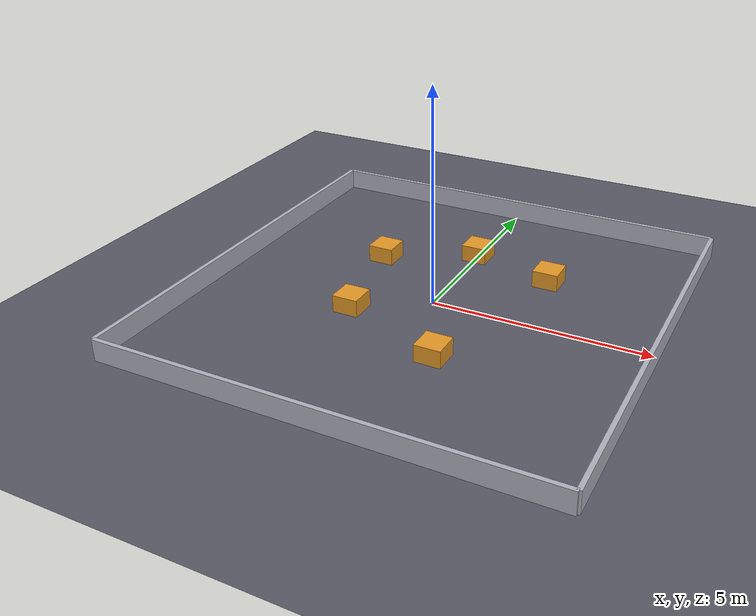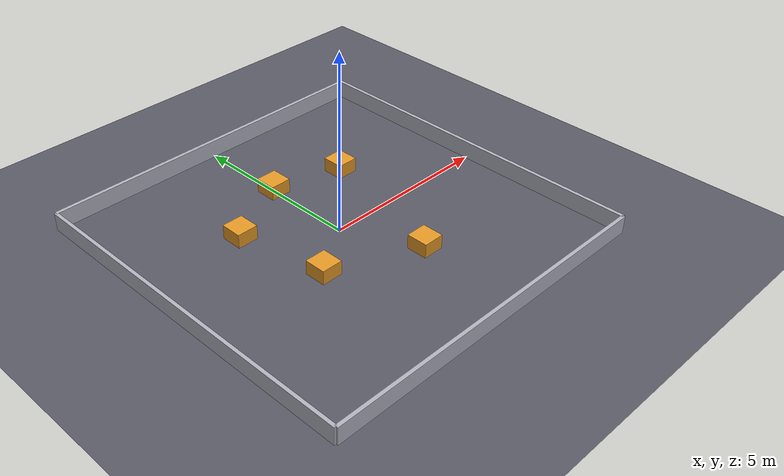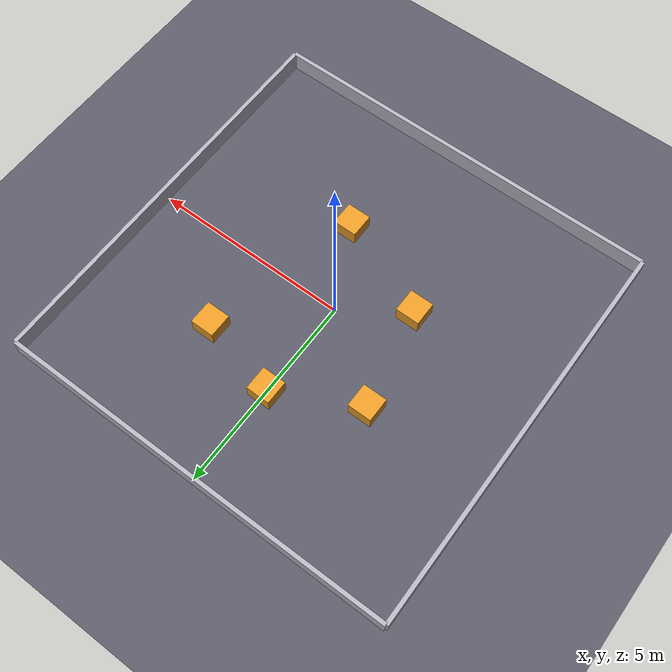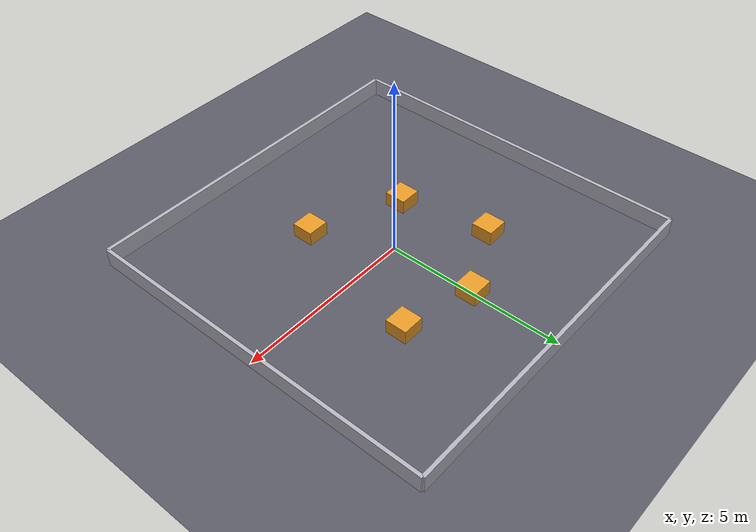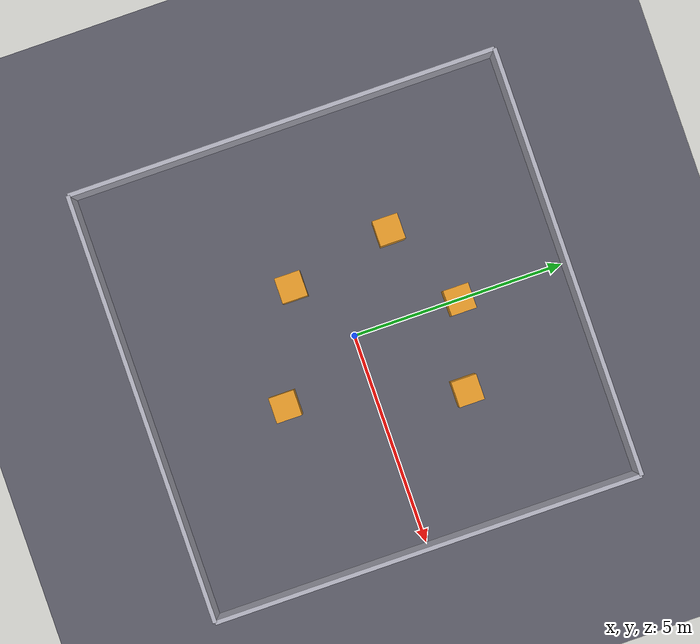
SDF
<?xml version="1.0" ?>
<sdf version="1.8">
  <world name="arena_10x10">
    <!-- Physics parameters -->
    <physics name="1ms" type="ignored">
      <max_step_size>0.001</max_step_size>
      <real_time_factor>1.0</real_time_factor>
    </physics>

    <!-- Plugins -->
    <plugin
      filename="ignition-gazebo-physics-system"
      name="ignition::gazebo::systems::Physics">
    </plugin>
    <plugin
      filename="ignition-gazebo-user-commands-system"
      name="ignition::gazebo::systems::UserCommands">
    </plugin>
    <plugin
      filename="ignition-gazebo-scene-broadcaster-system"
      name="ignition::gazebo::systems::SceneBroadcaster">
    </plugin>
    <plugin
      filename="ignition-gazebo-sensors-system"
      name="ignition::gazebo::systems::Sensors">
      <render_engine>ogre2</render_engine>
    </plugin>

    <!-- Sun Light -->
    <light type="directional" name="sun">
      <cast_shadows>true</cast_shadows>
      <pose>0 0 10 0 0 0</pose>
      <diffuse>0.8 0.8 0.8 1</diffuse>
      <specular>0.2 0.2 0.2 1</specular>
      <attenuation>
        <range>1000</range>
        <constant>0.9</constant>
        <linear>0.01</linear>
        <quadratic>0.001</quadratic>
      </attenuation>
      <direction>-0.5 0.1 -0.9</direction>
    </light>

    <!-- Ground Plane -->
    <model name="ground_plane">
      <static>true</static>
      <link name="link">
        <collision name="collision">
          <geometry>
            <plane>
              <normal>0 0 1</normal>
              <size>14 14</size>
            </plane>
          </geometry>
          <surface>
            <friction>
              <ode>
                <mu>100</mu>
                <mu2>50</mu2>
              </ode>
            </friction>
          </surface>
        </collision>
        <visual name="visual">
          <geometry>
            <plane>
              <normal>0 0 1</normal>
              <size>14 14</size>
            </plane>
          </geometry>
          <material>
            <ambient>0.25 0.25 0.30 1</ambient>
            <diffuse>0.35 0.35 0.40 1</diffuse>
            <specular>0.1 0.1 0.1 1</specular>
          </material>
        </visual>
      </link>
    </model>

    <!-- Arena Perimeter Walls (10m x 10m enclosure centered at origin) -->
    <!-- North Wall: y = +5.05 -->
    <model name="wall_north">
      <static>true</static>
      <pose>0 5.05 0.25 0 0 0</pose>
      <link name="link">
        <collision name="collision">
          <geometry>
            <box><size>10.1 0.1 0.5</size></box>
          </geometry>
        </collision>
        <visual name="visual">
          <geometry>
            <box><size>10.1 0.1 0.5</size></box>
          </geometry>
          <material>
            <ambient>0.6 0.6 0.65 1</ambient>
            <diffuse>0.7 0.7 0.75 1</diffuse>
          </material>
        </visual>
      </link>
    </model>

    <!-- South Wall: y = -5.05 -->
    <model name="wall_south">
      <static>true</static>
      <pose>0 -5.05 0.25 0 0 0</pose>
      <link name="link">
        <collision name="collision">
          <geometry>
            <box><size>10.1 0.1 0.5</size></box>
          </geometry>
        </collision>
        <visual name="visual">
          <geometry>
            <box><size>10.1 0.1 0.5</size></box>
          </geometry>
          <material>
            <ambient>0.6 0.6 0.65 1</ambient>
            <diffuse>0.7 0.7 0.75 1</diffuse>
          </material>
        </visual>
      </link>
    </model>

    <!-- East Wall: x = +5.05 -->
    <model name="wall_east">
      <static>true</static>
      <pose>5.05 0 0.25 0 0 0</pose>
      <link name="link">
        <collision name="collision">
          <geometry>
            <box><size>0.1 10.1 0.5</size></box>
          </geometry>
        </collision>
        <visual name="visual">
          <geometry>
            <box><size>0.1 10.1 0.5</size></box>
          </geometry>
          <material>
            <ambient>0.6 0.6 0.65 1</ambient>
            <diffuse>0.7 0.7 0.75 1</diffuse>
          </material>
        </visual>
      </link>
    </model>

    <!-- West Wall: x = -5.05 -->
    <model name="wall_west">
      <static>true</static>
      <pose>-5.05 0 0.25 0 0 0</pose>
      <link name="link">
        <collision name="collision">
          <geometry>
            <box><size>0.1 10.1 0.5</size></box>
          </geometry>
        </collision>
        <visual name="visual">
          <geometry>
            <box><size>0.1 10.1 0.5</size></box>
          </geometry>
          <material>
            <ambient>0.6 0.6 0.65 1</ambient>
            <diffuse>0.7 0.7 0.75 1</diffuse>
          </material>
        </visual>
      </link>
    </model>

    <!-- 5 Static Obstacles (Positions from Blueprint: (2,2), (-2,1.5), (1,-2), (-1.5,-1), (0,2.5)) -->
    <!-- Obstacle 1: (2, 2) -->
    <model name="obstacle_1">
      <static>true</static>
      <pose>2.0 2.0 0.20 0 0 0</pose>
      <link name="link">
        <collision name="collision">
          <geometry>
            <box><size>0.6 0.6 0.4</size></box>
          </geometry>
        </collision>
        <visual name="visual">
          <geometry>
            <box><size>0.6 0.6 0.4</size></box>
          </geometry>
          <material>
            <ambient>0.8 0.5 0.1 1</ambient>
            <diffuse>0.9 0.6 0.15 1</diffuse>
          </material>
        </visual>
      </link>
    </model>

    <!-- Obstacle 2: (-2, 1.5) -->
    <model name="obstacle_2">
      <static>true</static>
      <pose>-2.0 1.5 0.20 0 0 0</pose>
      <link name="link">
        <collision name="collision">
          <geometry>
            <box><size>0.6 0.6 0.4</size></box>
          </geometry>
        </collision>
        <visual name="visual">
          <geometry>
            <box><size>0.6 0.6 0.4</size></box>
          </geometry>
          <material>
            <ambient>0.8 0.5 0.1 1</ambient>
            <diffuse>0.9 0.6 0.15 1</diffuse>
          </material>
        </visual>
      </link>
    </model>

    <!-- Obstacle 3: (1, -2) -->
    <model name="obstacle_3">
      <static>true</static>
      <pose>1.0 -2.0 0.20 0 0 0</pose>
      <link name="link">
        <collision name="collision">
          <geometry>
            <box><size>0.6 0.6 0.4</size></box>
          </geometry>
        </collision>
        <visual name="visual">
          <geometry>
            <box><size>0.6 0.6 0.4</size></box>
          </geometry>
          <material>
            <ambient>0.8 0.5 0.1 1</ambient>
            <diffuse>0.9 0.6 0.15 1</diffuse>
          </material>
        </visual>
      </link>
    </model>

    <!-- Obstacle 4: (-1.5, -1) -->
    <model name="obstacle_4">
      <static>true</static>
      <pose>-1.5 -1.0 0.20 0 0 0</pose>
      <link name="link">
        <collision name="collision">
          <geometry>
            <box><size>0.6 0.6 0.4</size></box>
          </geometry>
        </collision>
        <visual name="visual">
          <geometry>
            <box><size>0.6 0.6 0.4</size></box>
          </geometry>
          <material>
            <ambient>0.8 0.5 0.1 1</ambient>
            <diffuse>0.9 0.6 0.15 1</diffuse>
          </material>
        </visual>
      </link>
    </model>

    <!-- Obstacle 5: (0, 2.5) -->
    <model name="obstacle_5">
      <static>true</static>
      <pose>0.0 2.5 0.20 0 0 0</pose>
      <link name="link">
        <collision name="collision">
          <geometry>
            <box><size>0.6 0.6 0.4</size></box>
          </geometry>
        </collision>
        <visual name="visual">
          <geometry>
            <box><size>0.6 0.6 0.4</size></box>
          </geometry>
          <material>
            <ambient>0.8 0.5 0.1 1</ambient>
            <diffuse>0.9 0.6 0.15 1</diffuse>
          </material>
        </visual>
      </link>
    </model>

  </world>
</sdf>
